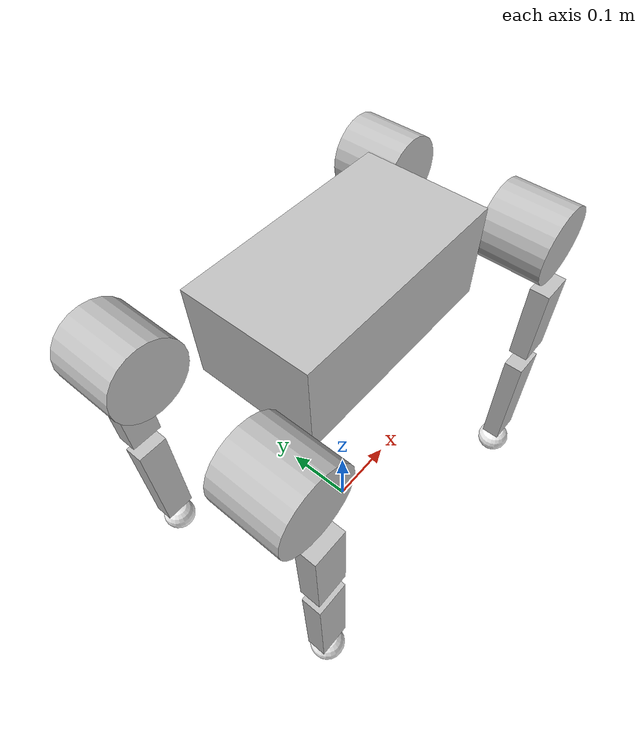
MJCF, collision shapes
<mujoco model="TOE_dog2">
  <compiler angle="radian" meshdir="assets/" autolimits="true" />
  <default>
    <default class="dog">
      <geom friction="0.4" margin="0.001" condim="1"/>
      <joint axis="0 1 0" damping="0.1" armature="0.01" frictionloss="0.2"/>
      <motor ctrlrange="-23.7 23.7"/>
      <default class="collision">
        <geom group="3"/>
        <default class="foot">
          <geom size="0.022" pos="-0.002 0 -0.20051" priority="1" condim="6"
            friction="0.4 0.02 0.01"/>
        </default>
      </default>
    </default>
  </default>
  <asset>
    <mesh name="TOE_base" file="TOE_base.STL"/>
    <mesh name="TOE_FL_hip" file="TOE_FL_hip.STL"/>
    <mesh name="TOE_thigh" file="TOE_L_thigh.STL"/>
    <mesh name="TOE_calf" file="TOE_calf.STL"/>
    <mesh name="TOE_foot" file="TOE_foot.STL"/>
    <mesh name="TOE_FR_hip" file="TOE_FR_hip.STL"/>
    <mesh name="TOE_R_thigh" file="TOE_R_thigh.STL"/>
    <mesh name="TOE_RL_hip" file="TOE_RL_hip.STL"/>
    <mesh name="TOE_RR_hip" file="TOE_RR_hip.STL"/>
  </asset>
  <worldbody>
    <body name="base" pos="0 0 0.445" childclass="dog">
    <inertial pos="0.021112 0 -0.005366" quat="-0.000543471 0.713435 -0.00173769 0.700719"
      mass="4.991"
      diaginertia="0.107027 0.0980771 0.0244531" />
    <freejoint />
    <geom type="mesh" contype="0" conaffinity="0" group="1" density="0" rgba="0.752941 0.752941 0.752941 1" mesh="TOE_base"/>
    <geom size="0.135 0.075 0.057" type="box" rgba="0.752941 0.752941 0.752941 1"/>
    <site name='imu' size='0.01' pos='0.0 0 0.0'/>
    <body name="FL_hip" pos="0.2 0.05 0">
      <inertial pos="-0.000462628 0.00296788 -0.000377201" quat="0.999349 -0.0314197 -0.014003 0.0108496" mass="0.669901" diaginertia="0.000851636 0.000609748 0.000545446"/>
      <joint name="FL_hip_joint" pos="0 0 0" axis="1 0 0" limited="true" range="-1 1"/>
      <geom type="mesh" contype="0" conaffinity="0" group="1" density="0" rgba="0.752941 0.752941 0.752941 1" mesh="TOE_FL_hip"/>
      <geom size="0.046 0.04" pos="0 0.05 0" quat="0.707105 0.707108 0 0" type="cylinder" rgba="0.752941 0.752941 0.752941 1"/>
      <body name="FL_thigh" pos="0 0.08953 0">
        <inertial pos="0.00026725 -0.0225193 -0.0253115" quat="0.535711 0.40409 -0.569721 0.474492" mass="1.05419" diaginertia="0.00435987 0.00427852 0.0011684"/>
        <joint name="FL_thigh_joint" pos="0 0 0" axis="0 1 0" limited="true" range="-1.5 2.5"/>
        <geom type="mesh" contype="0" conaffinity="0" group="1" density="0" rgba="0.752941 0.752941 0.752941 1" mesh="TOE_thigh"/>
        <geom size="0.055 0.01225 0.02" pos="0 0 -0.11" quat="0.707107 0 0.707107 0" type="box" rgba="0.752941 0.752941 0.752941 1"/>
        <body name="FL_calf" pos="0 0 -0.18">
          <inertial pos="0.000507789 -1.43527e-05 -0.0855512" quat="0.636461 0.771029 0.0138692 -0.0154875" mass="0.212191" diaginertia="0.00137582 0.00078145 0.000622841"/>
          <joint name="FL_calf_joint" pos="0 0 0" axis="0 1 0" limited="true" range="-2.6 -1"/>
          <geom type="mesh" contype="0" conaffinity="0" group="1" density="0" rgba="0.752941 0.752941 0.752941 1" mesh="TOE_calf"/>
          <geom size="0.08 0.01225 0.02" pos="0 0 -0.09" quat="0.707105 0 0.707108 0" type="box" rgba="0.752941 0.752941 0.752941 1"/>
          <geom pos="0 0 -0.20051" quat="1 0 -0.00062915 0" type="mesh" contype="0" conaffinity="0" group="1" density="0" rgba="1 1 1 1" mesh="TOE_foot"/>
          <geom size="0.022" pos="0 0 -0.20051" quat="1 0 -0.00062915 0" rgba="1 1 1 1" friction="0.4 0.02 0.01"/>
        </body>
      </body>
    </body>
    <body name="FR_hip" pos="0.2 -0.05 0">
      <inertial pos="-0.000462628 -0.00296788 0.000377201" quat="0.999349 0.0314197 0.014003 0.0108496" mass="0.669901" diaginertia="0.000851636 0.000609748 0.000545446"/>
      <joint name="FR_hip_joint" pos="0 0 0" axis="1 0 0" limited="true" range="-1 1"/>
      <geom type="mesh" contype="0" conaffinity="0" group="1" density="0" rgba="0.752941 0.752941 0.752941 1" mesh="TOE_FR_hip"/>
      <geom size="0.046 0.04" pos="0 -0.05 0" quat="0.707107 0.707107 0 0" type="cylinder" rgba="0.752941 0.752941 0.752941 1"/>
      <body name="FR_thigh" pos="0 -0.08953 0">
        <inertial pos="-0.00052911 0.022389 -0.026316" quat="0.522026 0.609797 -0.346277 0.485518" mass="1.05822" diaginertia="0.0044277 0.00434269 0.00116705"/>
        <joint name="FR_thigh_joint" pos="0 0 0" axis="0 1 0" limited="true" range="-1.5 2.5"/>
        <geom type="mesh" contype="0" conaffinity="0" group="1" density="0" rgba="0.75294 0.75294 0.75294 1" mesh="TOE_R_thigh"/>
        <geom size="0.055 0.01225 0.02" pos="0 0 -0.11" quat="0.707107 0 0.707107 0" type="box" rgba="0.75294 0.75294 0.75294 1"/>
        <body name="FR_calf" pos="0 0 -0.18">
          <inertial pos="0.000507789 -1.43538e-05 -0.0855512" quat="0.641138 0.767145 0.0139141 -0.0154366" mass="0.212191" diaginertia="0.00137582 0.000780708 0.000623584"/>
          <joint name="FR_calf_joint" pos="0 0 0" axis="0 1 0" limited="true" range="-2.6 -1"/>
          <geom type="mesh" contype="0" conaffinity="0" group="1" density="0" rgba="0.752941 0.752941 0.752941 1" mesh="TOE_calf"/>
          <geom size="0.08 0.01225 0.02" pos="0 0 -0.09" quat="0.707105 0 0.707108 0" type="box" rgba="0.752941 0.752941 0.752941 1"/>
          <geom pos="0 0 -0.20051" quat="1 0 -0.00062915 0" type="mesh" contype="0" conaffinity="0" group="1" density="0" rgba="1 1 1 1" mesh="TOE_foot"/>
          <geom size="0.022" pos="0 0 -0.20051" quat="1 0 -0.00062915 0" rgba="1 1 1 1" friction="0.4 0.02 0.01"/>
        </body>
      </body>
    </body>
    <body name="RL_hip" pos="-0.2 0.05 0">
      <inertial pos="0.000462628 0.00296788 0.000377201" quat="0.999349 -0.0314197 0.014003 -0.0108496" mass="0.669901" diaginertia="0.000851636 0.000609748 0.000545446"/>
      <joint name="RL_hip_joint" pos="0 0 0" axis="1 0 0" limited="true" range="-1 1"/>
      <geom type="mesh" contype="0" conaffinity="0" group="1" density="0" rgba="0.752941 0.752941 0.752941 1" mesh="TOE_RL_hip"/>
      <geom size="0.046 0.04" pos="0 0.05 0" quat="0.707107 0.707107 0 0" type="cylinder" rgba="0.752941 0.752941 0.752941 1"/>
      <body name="RL_thigh" pos="0 0.08953 0">
        <inertial pos="0.00026725 -0.0225193 -0.0253115" quat="0.536372 0.404573 -0.56946 0.473647" mass="1.05419" diaginertia="0.00435441 0.00427438 0.00116701"/>
        <joint name="RL_thigh_joint" pos="0 0 0" axis="0 1 0" limited="true" range="-1.5 2.5" />
        <geom type="mesh" contype="0" conaffinity="0" group="1" density="0" rgba="0.752941 0.752941 0.752941 1" mesh="TOE_thigh"/>
        <geom size="0.055 0.01225 0.02" pos="0 0 -0.11" quat="0.707107 0 0.707107 0" type="box" rgba="0.752941 0.752941 0.752941 1"/>
        <body name="RL_calf" pos="0 0 -0.18">
          <inertial pos="0.000507789 -1.43531e-05 -0.0855512" quat="0.636461 0.771029 0.0138692 -0.0154875" mass="0.212191" diaginertia="0.00137582 0.00078145 0.000622841"/>
          <joint name="RL_calf_joint" pos="0 0 0" axis="0 1 0" limited="true" range="-2.6 -1"/>
          <geom type="mesh" contype="0" conaffinity="0" group="1" density="0" rgba="0.752941 0.752941 0.752941 1" mesh="TOE_calf"/>
          <geom size="0.08 0.01225 0.02" pos="0 0 -0.09" quat="0.707105 0 0.707108 0" type="box" rgba="0.752941 0.752941 0.752941 1"/>
          <geom pos="0 0 -0.20051" quat="1 0 -0.00062915 0" type="mesh" contype="0" conaffinity="0" group="1" density="0" rgba="1 1 1 1" mesh="TOE_foot"/>
          <geom size="0.022" pos="0 0 -0.20051" quat="1 0 -0.00062915 0" rgba="1 1 1 1" friction="0.4 0.02 0.01"/>
        </body>
      </body>
    </body>
    <body name="RR_hip" pos="-0.2 -0.05 0">
      <inertial pos="0.000462628 -0.00296788 -0.000377201" quat="0.999349 0.0314197 -0.014003 -0.0108496" mass="0.669901" diaginertia="0.000851636 0.000609748 0.000545446"/>
      <joint name="RR_hip_joint" pos="0 0 0" axis="1 0 0" limited="true" range="-1 1"/>
      <geom type="mesh" contype="0" conaffinity="0" group="1" density="0" rgba="0.752941 0.752941 0.752941 1" mesh="TOE_RR_hip"/>
      <geom size="0.046 0.04" pos="0 -0.05 0" quat="0.707107 0.707107 0 0" type="cylinder" rgba="0.752941 0.752941 0.752941 1"/>
      <body name="RR_thigh" pos="0 -0.08953 0">
        <inertial pos="-0.000529113 0.0223887 -0.0263162" quat="0.522026 0.609797 -0.346277 0.485518" mass="1.05822" diaginertia="0.0044277 0.00434269 0.00116705"/>
        <joint name="RR_thigh_joint" pos="0 0 0" axis="0 1 0" limited="true" range="-1.5 2.5"/>
        <geom type="mesh" contype="0" conaffinity="0" group="1" density="0" rgba="0.752941 0.752941 0.752941 1" mesh="TOE_R_thigh"/>
        <geom size="0.055 0.01225 0.02" pos="0 0 -0.11" quat="0.707107 0 0.707107 0" type="box" rgba="0.752941 0.752941 0.752941 1"/>
        <body name="RR_calf" pos="0 0 -0.18">
          <inertial pos="0.000507789 -1.43528e-05 -0.0855511" quat="0.636461 0.771029 0.0138692 -0.0154875" mass="0.212191" diaginertia="0.00137582 0.00078145 0.000622841"/>
          <joint name="RR_calf_joint" pos="0 0 0" axis="0 1 0" limited="true" range="-2.6 -1"/>
          <geom type="mesh" contype="0" conaffinity="0" group="1" density="0" rgba="0.752941 0.752941 0.752941 1" mesh="TOE_calf"/>
          <geom size="0.08 0.01225 0.02" pos="0 0 -0.09" quat="0.707105 0 0.707108 0" type="box" rgba="0.752941 0.752941 0.752941 1"/>
          <geom pos="0 0 -0.20051" quat="1 0 -0.00062915 0" type="mesh" contype="0" conaffinity="0" group="1" density="0" rgba="1 1 1 1" mesh="TOE_foot"/>
          <geom size="0.022" pos="0 0 -0.200513" quat="1 0 -0.00062915 0" rgba="1 1 1 1" friction="0.4 0.02 0.01"/>
        </body>
      </body>
    </body>
  </body>
  </worldbody>
    <actuator>
    <motor name="FL_hip_joint" joint="FL_hip_joint" gear="1" ctrllimited="true" ctrlrange="-12 12"/>
		<motor name="FL_thigh_joint" joint="FL_thigh_joint" gear="1" ctrllimited="true" ctrlrange="-12 12"/>
		<motor name="FL_calf_joint" joint="FL_calf_joint" gear="1" ctrllimited="true" ctrlrange="-12 12"/>

		<motor name="FR_hip_joint" joint="FR_hip_joint" gear="1" ctrllimited="true" ctrlrange="-12 12"/>
		<motor name="FR_thigh_joint" joint="FR_thigh_joint" gear="1" ctrllimited="true" ctrlrange="-12 12"/>
		<motor name="FR_calf_joint" joint="FR_calf_joint" gear="1" ctrllimited="true" ctrlrange="-12 12"/>

    <motor name="RL_hip_joint" joint="RL_hip_joint" gear="1" ctrllimited="true" ctrlrange="-12 12"/>
		<motor name="RL_thigh_joint" joint="RL_thigh_joint" gear="1" ctrllimited="true" ctrlrange="-12 12"/>
		<motor name="RL_calf_joint" joint="RL_calf_joint" gear="1" ctrllimited="true" ctrlrange="-12 12"/>

		<motor name="RR_hip_joint" joint="RR_hip_joint" gear="1" ctrllimited="true" ctrlrange="-12 12"/>
		<motor name="RR_thigh_joint" joint="RR_thigh_joint" gear="1" ctrllimited="true" ctrlrange="-12 12"/>
		<motor name="RR_calf_joint" joint="RR_calf_joint" gear="1" ctrllimited="true" ctrlrange="-12 12"/>
  </actuator>
  <sensor>
    <jointpos name="FL_hip_pos" joint="FL_hip_joint" />
    <jointpos name="FL_thigh_pos" joint="FL_thigh_joint" />
    <jointpos name="FL_calf_pos" joint="FL_calf_joint" />
    <jointpos name="FR_hip_pos" joint="FR_hip_joint" />
    <jointpos name="FR_thigh_pos" joint="FR_thigh_joint" />
    <jointpos name="FR_calf_pos" joint="FR_calf_joint" />
    <jointpos name="RL_hip_pos" joint="RL_hip_joint" />
    <jointpos name="RL_thigh_pos" joint="RL_thigh_joint" />
    <jointpos name="RL_calf_pos" joint="RL_calf_joint" />
    <jointpos name="RR_hip_pos" joint="RR_hip_joint" />
    <jointpos name="RR_thigh_pos" joint="RR_thigh_joint" />
    <jointpos name="RR_calf_pos" joint="RR_calf_joint" />

    <jointvel name="FL_hip_vel" joint="FL_hip_joint" />
    <jointvel name="FL_thigh_vel" joint="FL_thigh_joint" />
    <jointvel name="FL_calf_vel" joint="FL_calf_joint" />
    <jointvel name="FR_hip_vel" joint="FR_hip_joint" />
    <jointvel name="FR_thigh_vel" joint="FR_thigh_joint" />
    <jointvel name="FR_calf_vel" joint="FR_calf_joint" />
    <jointvel name="RL_hip_vel" joint="RL_hip_joint" />
    <jointvel name="RL_thigh_vel" joint="RL_thigh_joint" />
    <jointvel name="RL_calf_vel" joint="RL_calf_joint" />
    <jointvel name="RR_hip_vel" joint="RR_hip_joint" />
    <jointvel name="RR_thigh_vel" joint="RR_thigh_joint" />
    <jointvel name="RR_calf_vel" joint="RR_calf_joint" />

    <jointactuatorfrc name="FL_hip_torque" joint="FL_hip_joint" noise="0.01" />
    <jointactuatorfrc name="FL_thigh_torque" joint="FL_thigh_joint" noise="0.01" />
    <jointactuatorfrc name="FL_calf_torque" joint="FL_calf_joint" noise="0.01" />
    <jointactuatorfrc name="FR_hip_torque" joint="FR_hip_joint" noise="0.01" />
    <jointactuatorfrc name="FR_thigh_torque" joint="FR_thigh_joint" noise="0.01" />
    <jointactuatorfrc name="FR_calf_torque" joint="FR_calf_joint" noise="0.01" />
    <jointactuatorfrc name="RL_hip_torque" joint="RL_hip_joint" noise="0.01" />
    <jointactuatorfrc name="RL_thigh_torque" joint="RL_thigh_joint" noise="0.01" />
    <jointactuatorfrc name="RL_calf_torque" joint="RL_calf_joint" noise="0.01" />
    <jointactuatorfrc name="RR_hip_torque" joint="RR_hip_joint" noise="0.01" />
    <jointactuatorfrc name="RR_thigh_torque" joint="RR_thigh_joint" noise="0.01" />
    <jointactuatorfrc name="RR_calf_torque" joint="RR_calf_joint" noise="0.01" />

    <framequat     name='orientation' objtype='site' noise='0.001' objname='imu'/>
    <framepos      name='position' objtype='site' noise='0.001' objname='imu'/>
    <framelinvel  name="base_lin_vel" objtype="site" objname="imu" />
    <gyro          name='angular-velocity'    site='imu' noise='0.005' cutoff='34.9'/>
    <velocimeter   name='linear-velocity'     site='imu' noise='0.001' cutoff='30'/>
    <accelerometer name='linear-acceleration' site='imu' noise='0.005' cutoff='157'/>
    <magnetometer  name='magnetometer'        site='imu'/>

  </sensor>
</mujoco>
